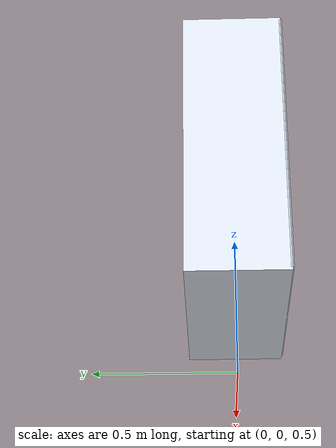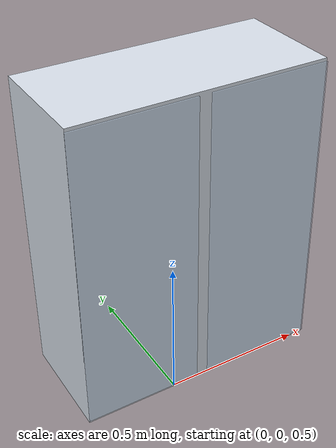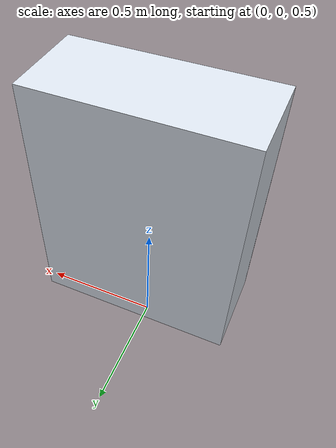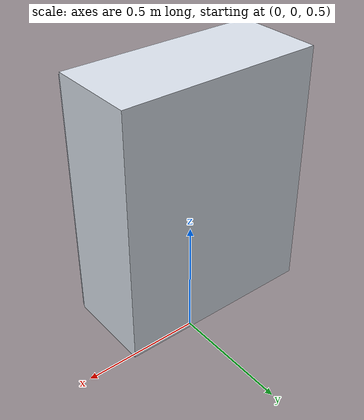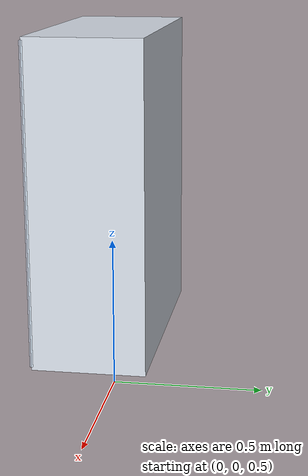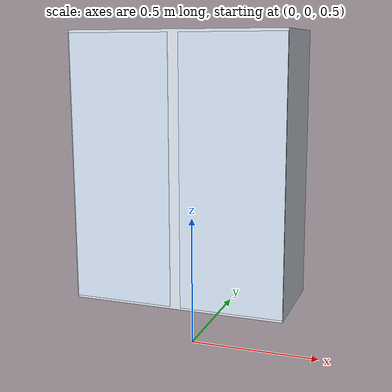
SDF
<?xml version="1.0"?>
<sdf version="1.6">
  <model name="med_cabinet">
    <static>true</static>
    <!-- Main box -->
    <link name="body">
      <pose>0 0 1.2 0 0 0</pose>
      <collision name="c"><geometry><box><size>0.8 0.35 1.0</size></box></geometry></collision>
      <visual name="v">
        <geometry><box><size>0.8 0.35 1.0</size></box></geometry>
        <material><ambient>0.85 0.88 0.92 1</ambient><diffuse>0.85 0.88 0.92 1</diffuse></material>
      </visual>
    </link>
    <!-- Glass doors (semi-transparent front) -->
    <link name="door_l">
      <pose>-0.21 -0.175 1.2 0 0 0</pose>
      <visual name="v">
        <geometry><box><size>0.38 0.01 0.98</size></box></geometry>
        <material><ambient>0.8 0.9 1 0.4</ambient><diffuse>0.8 0.9 1 0.4</diffuse></material>
      </visual>
    </link>
    <link name="door_r">
      <pose>0.21 -0.175 1.2 0 0 0</pose>
      <visual name="v">
        <geometry><box><size>0.38 0.01 0.98</size></box></geometry>
        <material><ambient>0.8 0.9 1 0.4</ambient><diffuse>0.8 0.9 1 0.4</diffuse></material>
      </visual>
    </link>
    <!-- Interior shelves -->
    <link name="shelf1"><pose>0 0 0.82 0 0 0</pose>
      <visual name="v"><geometry><box><size>0.76 0.32 0.015</size></box></geometry>
        <material><ambient>0.8 0.8 0.8 1</ambient><diffuse>0.8 0.8 0.8 1</diffuse></material></visual>
    </link>
    <link name="shelf2"><pose>0 0 1.12 0 0 0</pose>
      <visual name="v"><geometry><box><size>0.76 0.32 0.015</size></box></geometry>
        <material><ambient>0.8 0.8 0.8 1</ambient><diffuse>0.8 0.8 0.8 1</diffuse></material></visual>
    </link>
    <link name="shelf3"><pose>0 0 1.42 0 0 0</pose>
      <visual name="v"><geometry><box><size>0.76 0.32 0.015</size></box></geometry>
        <material><ambient>0.8 0.8 0.8 1</ambient><diffuse>0.8 0.8 0.8 1</diffuse></material></visual>
    </link>
  </model>
</sdf>
